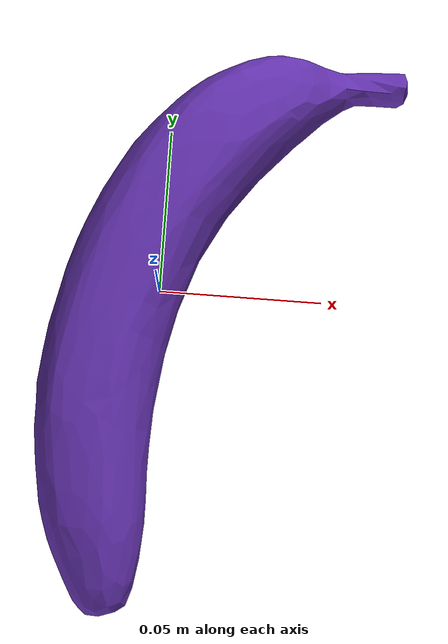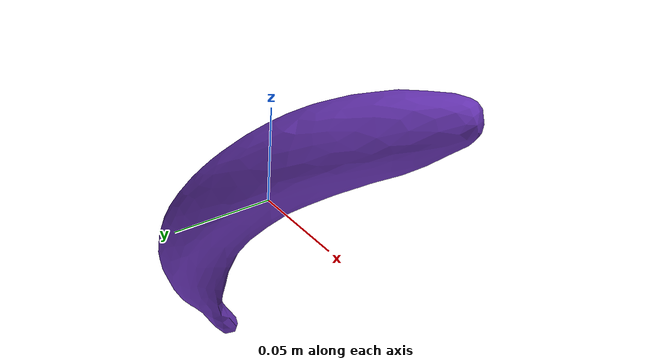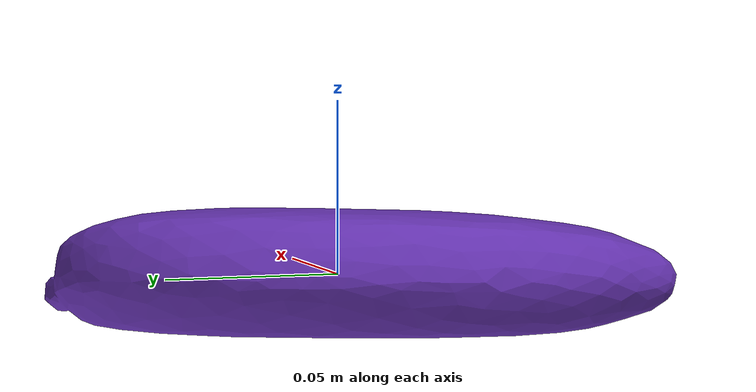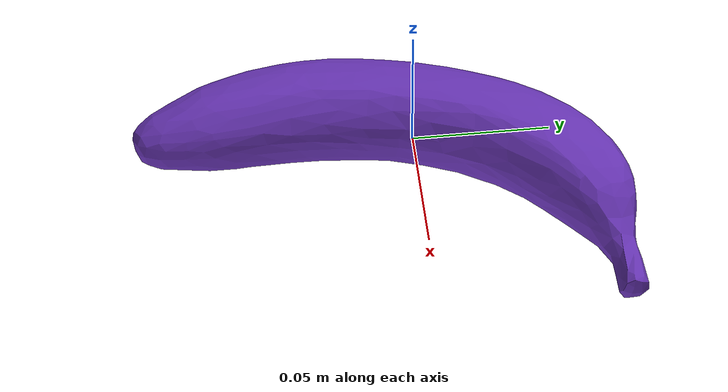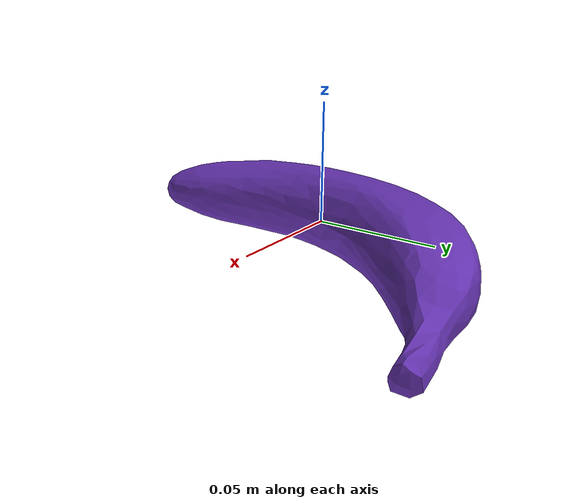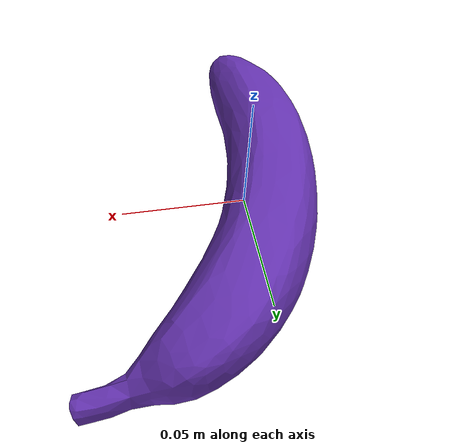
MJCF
<mujoco model="top_watertight_tiny">

  <asset>
    <mesh file="top_watertight_tiny.obj"/>
    <mesh file="top_watertight_tiny_collision_0.obj"/>
    <mesh file="top_watertight_tiny_collision_1.obj"/>
    <mesh file="top_watertight_tiny_collision_2.obj"/>
    <mesh file="top_watertight_tiny_collision_3.obj"/>
  </asset>
  <worldbody>
    <body name="top_watertight_tiny">
      <freejoint/>
      <geom solimp="0.90 0.95 0.001" solref="0.02 1.0" density="100" friction="0.95 0.4 0.3" rgba="0.4 0.2 0.7 1" mesh="top_watertight_tiny" group="2" type="mesh" contype="0" conaffinity="0"/>
      <geom solimp="0.90 0.95 0.001" solref="0.02 1.0" density="100" friction="0.95 0.4 0.3" mesh="top_watertight_tiny_collision_0" rgba="0.2522821520283557 0.24271396328775297 0.11304843140323917 1" group="3" type="mesh"/>
      <geom solimp="0.90 0.95 0.001" solref="0.02 1.0" density="100" friction="0.95 0.4 0.3" mesh="top_watertight_tiny_collision_1" rgba="0.14516139960164276 0.9133240308459104 0.49546584289241036 1" group="3" type="mesh"/>
      <geom solimp="0.90 0.95 0.001" solref="0.02 1.0" density="100" friction="0.95 0.4 0.3" mesh="top_watertight_tiny_collision_2" rgba="0.4992708090610992 0.8932968513982239 0.6441356368941451 1" group="3" type="mesh"/>
      <geom solimp="0.90 0.95 0.001" solref="0.02 1.0" density="100" friction="0.95 0.4 0.3" mesh="top_watertight_tiny_collision_3" rgba="0.47546597488848985 0.3313883585501115 0.6874314861186995 1" group="3" type="mesh"/>
    </body>
  </worldbody>
</mujoco>
